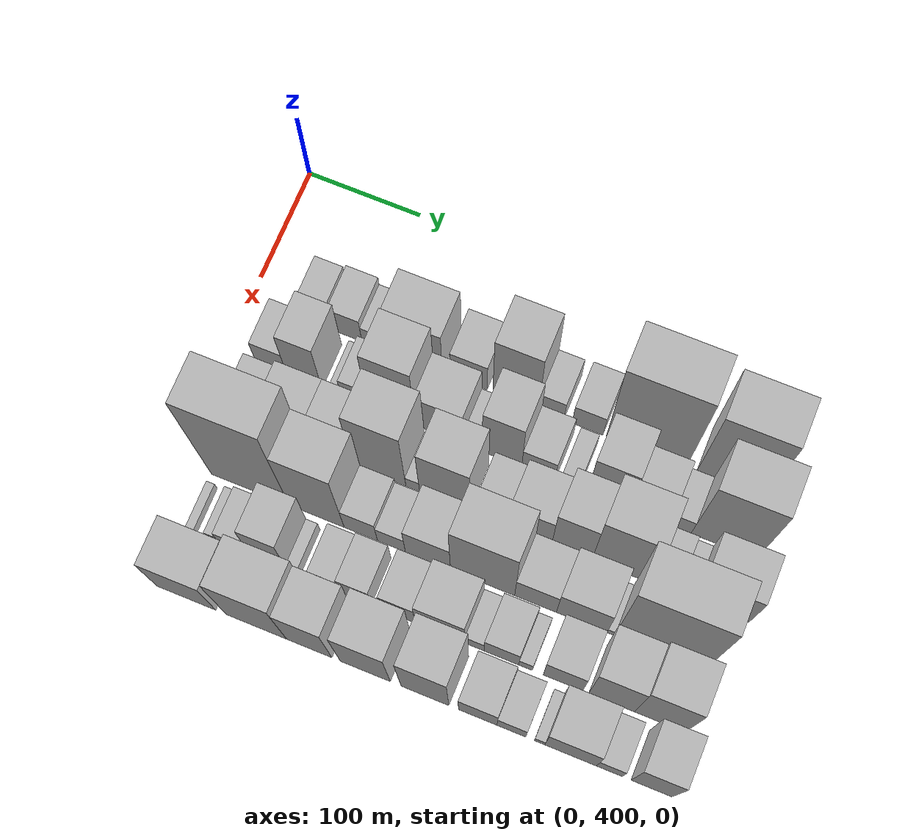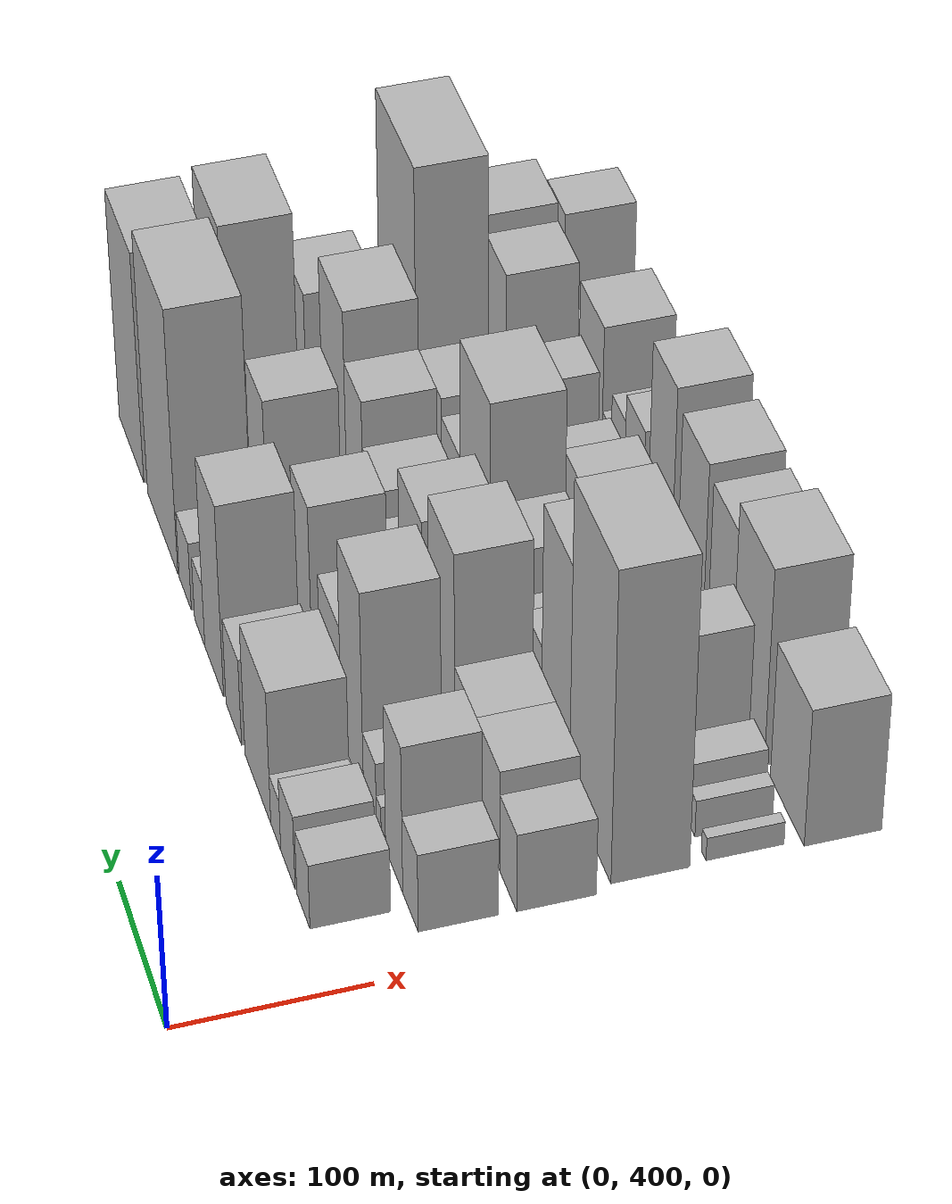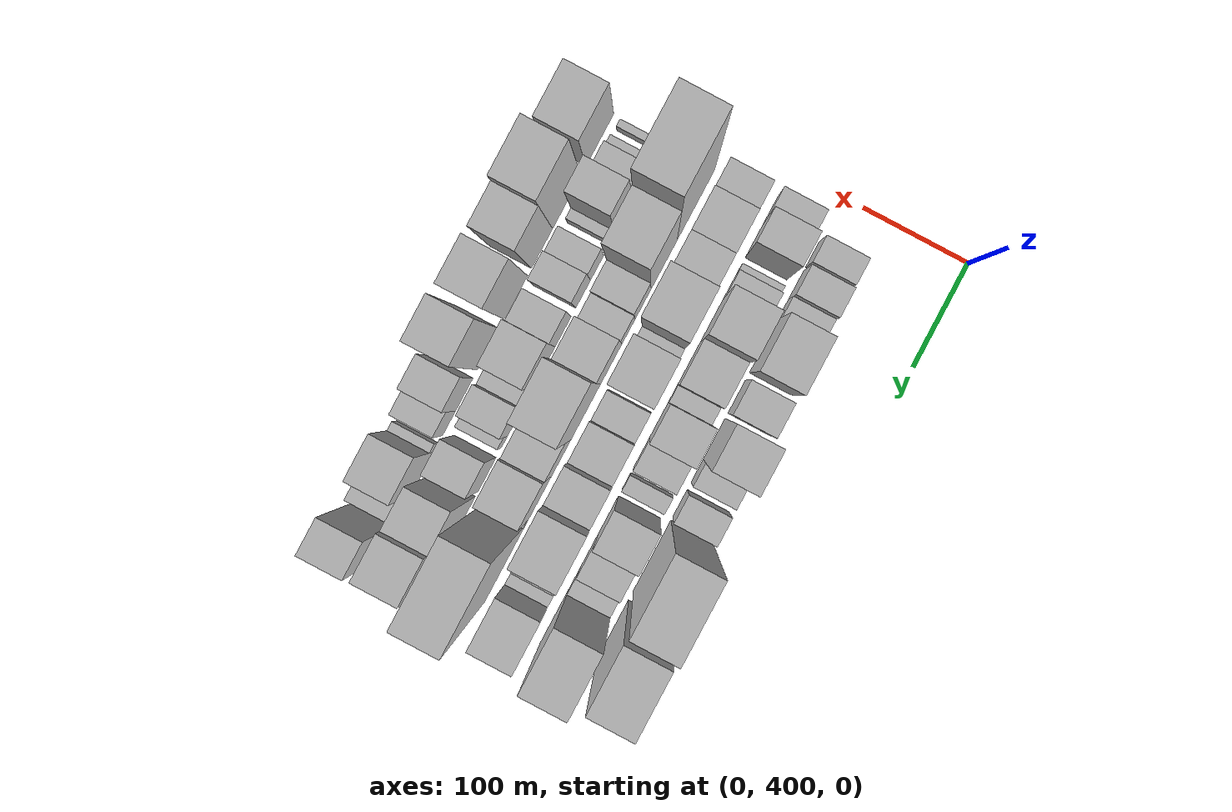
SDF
<sdf version="1.6">
 <world name="default">
  <model name="building_39">
   <static>1</static>
   <pose>100.0000 455.8428 0 0.000000 0.000000 0.000000</pose>
   <link name="link">
    <pose>0 0 21.00 0 0 0</pose>
    <collision name="collision"><geometry><box><size>40.0000 24.7315 42.0000</size></box></geometry></collision>
    <visual name="visual">
     <cast_shadows>0</cast_shadows>
     <geometry><box><size>40.0000 24.7315 42.0000</size></box></geometry>
     <material>
      <script>
       <uri>model://HANNAS_wall/materials/scripts</uri>
       <uri>model://HANNAS_wall/materials/textures</uri>
       <name>vrc/HANNAS_wall</name>
      </script>
     </material>
    </visual>
   </link>
  </model>
  <model name="building_40">
   <static>1</static>
   <pose>100.0000 484.9820 0 0.000000 0.000000 0.000000</pose>
   <link name="link">
    <pose>0 0 24.00 0 0 0</pose>
    <collision name="collision"><geometry><box><size>40.0000 27.5468 48.0000</size></box></geometry></collision>
    <visual name="visual">
     <cast_shadows>0</cast_shadows>
     <geometry><box><size>40.0000 27.5468 48.0000</size></box></geometry>
     <material>
      <script>
       <uri>model://HANNAS_wall/materials/scripts</uri>
       <uri>model://HANNAS_wall/materials/textures</uri>
       <name>vrc/HANNAS_wall</name>
      </script>
     </material>
    </visual>
   </link>
  </model>
  <model name="building_41">
   <static>1</static>
   <pose>100.0000 508.3720 0 0.000000 0.000000 0.000000</pose>
   <link name="link">
    <pose>0 0 16.50 0 0 0</pose>
    <collision name="collision"><geometry><box><size>40.0000 19.2333 33.0000</size></box></geometry></collision>
    <visual name="visual">
     <cast_shadows>0</cast_shadows>
     <geometry><box><size>40.0000 19.2333 33.0000</size></box></geometry>
     <material>
      <script>
       <uri>model://HANNAS_wall/materials/scripts</uri>
       <uri>model://HANNAS_wall/materials/textures</uri>
       <name>vrc/HANNAS_wall</name>
      </script>
     </material>
    </visual>
   </link>
  </model>
  <model name="building_42">
   <static>1</static>
   <pose>100.0000 543.5902 0 0.000000 0.000000 0.000000</pose>
   <link name="link">
    <pose>0 0 43.50 0 0 0</pose>
    <collision name="collision"><geometry><box><size>40.0000 51.2032 87.0000</size></box></geometry></collision>
    <visual name="visual">
     <cast_shadows>0</cast_shadows>
     <geometry><box><size>40.0000 51.2032 87.0000</size></box></geometry>
     <material>
      <script>
       <uri>model://HANNAS_wall/materials/scripts</uri>
       <uri>model://HANNAS_wall/materials/textures</uri>
       <name>vrc/HANNAS_wall</name>
      </script>
     </material>
    </visual>
   </link>
  </model>
  <model name="building_43">
   <static>1</static>
   <pose>100.0000 592.1448 0 0.000000 0.000000 0.000000</pose>
   <link name="link">
    <pose>0 0 28.50 0 0 0</pose>
    <collision name="collision"><geometry><box><size>40.0000 31.9061 57.0000</size></box></geometry></collision>
    <visual name="visual">
     <cast_shadows>0</cast_shadows>
     <geometry><box><size>40.0000 31.9061 57.0000</size></box></geometry>
     <material>
      <script>
       <uri>model://HANNAS_wall/materials/scripts</uri>
       <uri>model://HANNAS_wall/materials/textures</uri>
       <name>vrc/HANNAS_wall</name>
      </script>
     </material>
    </visual>
   </link>
  </model>
  <model name="building_44">
   <static>1</static>
   <pose>100.0000 632.7894 0 0.000000 0.000000 0.000000</pose>
   <link name="link">
    <pose>0 0 63.00 0 0 0</pose>
    <collision name="collision"><geometry><box><size>40.0000 39.3831 126.0000</size></box></geometry></collision>
    <visual name="visual">
     <cast_shadows>0</cast_shadows>
     <geometry><box><size>40.0000 39.3831 126.0000</size></box></geometry>
     <material>
      <script>
       <uri>model://HANNAS_wall/materials/scripts</uri>
       <uri>model://HANNAS_wall/materials/textures</uri>
       <name>vrc/HANNAS_wall</name>
      </script>
     </material>
    </visual>
   </link>
  </model>
  <model name="building_45">
   <static>1</static>
   <pose>100.0000 663.4566 0 0.000000 0.000000 0.000000</pose>
   <link name="link">
    <pose>0 0 21.00 0 0 0</pose>
    <collision name="collision"><geometry><box><size>40.0000 21.9513 42.0000</size></box></geometry></collision>
    <visual name="visual">
     <cast_shadows>0</cast_shadows>
     <geometry><box><size>40.0000 21.9513 42.0000</size></box></geometry>
     <material>
      <script>
       <uri>model://HANNAS_wall/materials/scripts</uri>
       <uri>model://HANNAS_wall/materials/textures</uri>
       <name>vrc/HANNAS_wall</name>
      </script>
     </material>
    </visual>
   </link>
  </model>
  <model name="building_46">
   <static>1</static>
   <pose>100.0000 694.6603 0 0.000000 0.000000 0.000000</pose>
   <link name="link">
    <pose>0 0 22.50 0 0 0</pose>
    <collision name="collision"><geometry><box><size>40.0000 26.4563 45.0000</size></box></geometry></collision>
    <visual name="visual">
     <cast_shadows>0</cast_shadows>
     <geometry><box><size>40.0000 26.4563 45.0000</size></box></geometry>
     <material>
      <script>
       <uri>model://HANNAS_wall/materials/scripts</uri>
       <uri>model://HANNAS_wall/materials/textures</uri>
       <name>vrc/HANNAS_wall</name>
      </script>
     </material>
    </visual>
   </link>
  </model>
  <model name="building_47">
   <static>1</static>
   <pose>100.0000 744.8290 0 0.000000 0.000000 0.000000</pose>
   <link name="link">
    <pose>0 0 87.00 0 0 0</pose>
    <collision name="collision"><geometry><box><size>40.0000 67.8811 174.0000</size></box></geometry></collision>
    <visual name="visual">
     <cast_shadows>0</cast_shadows>
     <geometry><box><size>40.0000 67.8811 174.0000</size></box></geometry>
     <material>
      <script>
       <uri>model://HANNAS_wall/materials/scripts</uri>
       <uri>model://HANNAS_wall/materials/textures</uri>
       <name>vrc/HANNAS_wall</name>
      </script>
     </material>
    </visual>
   </link>
  </model>
  <model name="building_48">
   <static>1</static>
   <pose>100.0000 816.4082 0 0.000000 0.000000 0.000000</pose>
   <link name="link">
    <pose>0 0 76.50 0 0 0</pose>
    <collision name="collision"><geometry><box><size>40.0000 57.2773 153.0000</size></box></geometry></collision>
    <visual name="visual">
     <cast_shadows>0</cast_shadows>
     <geometry><box><size>40.0000 57.2773 153.0000</size></box></geometry>
     <material>
      <script>
       <uri>model://HANNAS_wall/materials/scripts</uri>
       <uri>model://HANNAS_wall/materials/textures</uri>
       <name>vrc/HANNAS_wall</name>
      </script>
     </material>
    </visual>
   </link>
  </model>
  <model name="building_89">
   <static>1</static>
   <pose>149.0000 440.4236 0 0.000000 0.000000 0.000000</pose>
   <link name="link">
    <pose>0 0 25.50 0 0 0</pose>
    <collision name="collision"><geometry><box><size>40.0000 27.1819 51.0000</size></box></geometry></collision>
    <visual name="visual">
     <cast_shadows>0</cast_shadows>
     <geometry><box><size>40.0000 27.1819 51.0000</size></box></geometry>
     <material>
      <script>
       <uri>model://HANNAS_wall/materials/scripts</uri>
       <uri>model://HANNAS_wall/materials/textures</uri>
       <name>vrc/HANNAS_wall</name>
      </script>
     </material>
    </visual>
   </link>
  </model>
  <model name="building_90">
   <static>1</static>
   <pose>149.0000 469.3264 0 0.000000 0.000000 0.000000</pose>
   <link name="link">
    <pose>0 0 48.00 0 0 0</pose>
    <collision name="collision"><geometry><box><size>40.0000 30.6237 96.0000</size></box></geometry></collision>
    <visual name="visual">
     <cast_shadows>0</cast_shadows>
     <geometry><box><size>40.0000 30.6237 96.0000</size></box></geometry>
     <material>
      <script>
       <uri>model://HANNAS_wall/materials/scripts</uri>
       <uri>model://HANNAS_wall/materials/textures</uri>
       <name>vrc/HANNAS_wall</name>
      </script>
     </material>
    </visual>
   </link>
  </model>
  <model name="building_91">
   <static>1</static>
   <pose>149.0000 496.9773 0 0.000000 0.000000 0.000000</pose>
   <link name="link">
    <pose>0 0 10.50 0 0 0</pose>
    <collision name="collision"><geometry><box><size>40.0000 8.6781 21.0000</size></box></geometry></collision>
    <visual name="visual">
     <cast_shadows>0</cast_shadows>
     <geometry><box><size>40.0000 8.6781 21.0000</size></box></geometry>
     <material>
      <script>
       <uri>model://HANNAS_wall/materials/scripts</uri>
       <uri>model://HANNAS_wall/materials/textures</uri>
       <name>vrc/HANNAS_wall</name>
      </script>
     </material>
    </visual>
   </link>
  </model>
  <model name="building_92">
   <static>1</static>
   <pose>149.0000 513.1711 0 0.000000 0.000000 0.000000</pose>
   <link name="link">
    <pose>0 0 21.00 0 0 0</pose>
    <collision name="collision"><geometry><box><size>40.0000 23.7094 42.0000</size></box></geometry></collision>
    <visual name="visual">
     <cast_shadows>0</cast_shadows>
     <geometry><box><size>40.0000 23.7094 42.0000</size></box></geometry>
     <material>
      <script>
       <uri>model://HANNAS_wall/materials/scripts</uri>
       <uri>model://HANNAS_wall/materials/textures</uri>
       <name>vrc/HANNAS_wall</name>
      </script>
     </material>
    </visual>
   </link>
  </model>
  <model name="building_93">
   <static>1</static>
   <pose>149.0000 545.5395 0 0.000000 0.000000 0.000000</pose>
   <link name="link">
    <pose>0 0 66.00 0 0 0</pose>
    <collision name="collision"><geometry><box><size>40.0000 41.0275 132.0000</size></box></geometry></collision>
    <visual name="visual">
     <cast_shadows>0</cast_shadows>
     <geometry><box><size>40.0000 41.0275 132.0000</size></box></geometry>
     <material>
      <script>
       <uri>model://HANNAS_wall/materials/scripts</uri>
       <uri>model://HANNAS_wall/materials/textures</uri>
       <name>vrc/HANNAS_wall</name>
      </script>
     </material>
    </visual>
   </link>
  </model>
  <model name="building_94">
   <static>1</static>
   <pose>149.0000 586.5648 0 0.000000 0.000000 0.000000</pose>
   <link name="link">
    <pose>0 0 37.50 0 0 0</pose>
    <collision name="collision"><geometry><box><size>40.0000 41.0231 75.0000</size></box></geometry></collision>
    <visual name="visual">
     <cast_shadows>0</cast_shadows>
     <geometry><box><size>40.0000 41.0231 75.0000</size></box></geometry>
     <material>
      <script>
       <uri>model://HANNAS_wall/materials/scripts</uri>
       <uri>model://HANNAS_wall/materials/textures</uri>
       <name>vrc/HANNAS_wall</name>
      </script>
     </material>
    </visual>
   </link>
  </model>
  <model name="building_95">
   <static>1</static>
   <pose>149.0000 615.2348 0 0.000000 0.000000 0.000000</pose>
   <link name="link">
    <pose>0 0 15.00 0 0 0</pose>
    <collision name="collision"><geometry><box><size>40.0000 16.3168 30.0000</size></box></geometry></collision>
    <visual name="visual">
     <cast_shadows>0</cast_shadows>
     <geometry><box><size>40.0000 16.3168 30.0000</size></box></geometry>
     <material>
      <script>
       <uri>model://HANNAS_wall/materials/scripts</uri>
       <uri>model://HANNAS_wall/materials/textures</uri>
       <name>vrc/HANNAS_wall</name>
      </script>
     </material>
    </visual>
   </link>
  </model>
  <model name="building_96">
   <static>1</static>
   <pose>149.0000 640.4226 0 0.000000 0.000000 0.000000</pose>
   <link name="link">
    <pose>0 0 52.50 0 0 0</pose>
    <collision name="collision"><geometry><box><size>40.0000 34.0589 105.0000</size></box></geometry></collision>
    <visual name="visual">
     <cast_shadows>0</cast_shadows>
     <geometry><box><size>40.0000 34.0589 105.0000</size></box></geometry>
     <material>
      <script>
       <uri>model://HANNAS_wall/materials/scripts</uri>
       <uri>model://HANNAS_wall/materials/textures</uri>
       <name>vrc/HANNAS_wall</name>
      </script>
     </material>
    </visual>
   </link>
  </model>
  <model name="building_97">
   <static>1</static>
   <pose>149.0000 671.7177 0 0.000000 0.000000 0.000000</pose>
   <link name="link">
    <pose>0 0 24.00 0 0 0</pose>
    <collision name="collision"><geometry><box><size>40.0000 28.5313 48.0000</size></box></geometry></collision>
    <visual name="visual">
     <cast_shadows>0</cast_shadows>
     <geometry><box><size>40.0000 28.5313 48.0000</size></box></geometry>
     <material>
      <script>
       <uri>model://HANNAS_wall/materials/scripts</uri>
       <uri>model://HANNAS_wall/materials/textures</uri>
       <name>vrc/HANNAS_wall</name>
      </script>
     </material>
    </visual>
   </link>
  </model>
  <model name="building_98">
   <static>1</static>
   <pose>149.0000 698.7285 0 0.000000 0.000000 0.000000</pose>
   <link name="link">
    <pose>0 0 15.00 0 0 0</pose>
    <collision name="collision"><geometry><box><size>40.0000 15.4903 30.0000</size></box></geometry></collision>
    <visual name="visual">
     <cast_shadows>0</cast_shadows>
     <geometry><box><size>40.0000 15.4903 30.0000</size></box></geometry>
     <material>
      <script>
       <uri>model://HANNAS_wall/materials/scripts</uri>
       <uri>model://HANNAS_wall/materials/textures</uri>
       <name>vrc/HANNAS_wall</name>
      </script>
     </material>
    </visual>
   </link>
  </model>
  <model name="building_99">
   <static>1</static>
   <pose>149.0000 731.2750 0 0.000000 0.000000 0.000000</pose>
   <link name="link">
    <pose>0 0 51.00 0 0 0</pose>
    <collision name="collision"><geometry><box><size>40.0000 35.6026 102.0000</size></box></geometry></collision>
    <visual name="visual">
     <cast_shadows>0</cast_shadows>
     <geometry><box><size>40.0000 35.6026 102.0000</size></box></geometry>
     <material>
      <script>
       <uri>model://HANNAS_wall/materials/scripts</uri>
       <uri>model://HANNAS_wall/materials/textures</uri>
       <name>vrc/HANNAS_wall</name>
      </script>
     </material>
    </visual>
   </link>
  </model>
  <model name="building_100">
   <static>1</static>
   <pose>149.0000 765.5694 0 0.000000 0.000000 0.000000</pose>
   <link name="link">
    <pose>0 0 28.50 0 0 0</pose>
    <collision name="collision"><geometry><box><size>40.0000 32.9861 57.0000</size></box></geometry></collision>
    <visual name="visual">
     <cast_shadows>0</cast_shadows>
     <geometry><box><size>40.0000 32.9861 57.0000</size></box></geometry>
     <material>
      <script>
       <uri>model://HANNAS_wall/materials/scripts</uri>
       <uri>model://HANNAS_wall/materials/textures</uri>
       <name>vrc/HANNAS_wall</name>
      </script>
     </material>
    </visual>
   </link>
  </model>
  <model name="building_101">
   <static>1</static>
   <pose>149.0000 791.4416 0 0.000000 0.000000 0.000000</pose>
   <link name="link">
    <pose>0 0 18.00 0 0 0</pose>
    <collision name="collision"><geometry><box><size>40.0000 18.7583 36.0000</size></box></geometry></collision>
    <visual name="visual">
     <cast_shadows>0</cast_shadows>
     <geometry><box><size>40.0000 18.7583 36.0000</size></box></geometry>
     <material>
      <script>
       <uri>model://HANNAS_wall/materials/scripts</uri>
       <uri>model://HANNAS_wall/materials/textures</uri>
       <name>vrc/HANNAS_wall</name>
      </script>
     </material>
    </visual>
   </link>
  </model>
  <model name="building_102">
   <static>1</static>
   <pose>149.0000 828.1147 0 0.000000 0.000000 0.000000</pose>
   <link name="link">
    <pose>0 0 75.00 0 0 0</pose>
    <collision name="collision"><geometry><box><size>40.0000 54.5879 150.0000</size></box></geometry></collision>
    <visual name="visual">
     <cast_shadows>0</cast_shadows>
     <geometry><box><size>40.0000 54.5879 150.0000</size></box></geometry>
     <material>
      <script>
       <uri>model://HANNAS_wall/materials/scripts</uri>
       <uri>model://HANNAS_wall/materials/textures</uri>
       <name>vrc/HANNAS_wall</name>
      </script>
     </material>
    </visual>
   </link>
  </model>
  <model name="building_139">
   <static>1</static>
   <pose>198.0000 440.7717 0 0.000000 0.000000 0.000000</pose>
   <link name="link">
    <pose>0 0 25.50 0 0 0</pose>
    <collision name="collision"><geometry><box><size>40.0000 28.6304 51.0000</size></box></geometry></collision>
    <visual name="visual">
     <cast_shadows>0</cast_shadows>
     <geometry><box><size>40.0000 28.6304 51.0000</size></box></geometry>
     <material>
      <script>
       <uri>model://HANNAS_wall/materials/scripts</uri>
       <uri>model://HANNAS_wall/materials/textures</uri>
       <name>vrc/HANNAS_wall</name>
      </script>
     </material>
    </visual>
   </link>
  </model>
  <model name="building_140">
   <static>1</static>
   <pose>198.0000 474.8522 0 0.000000 0.000000 0.000000</pose>
   <link name="link">
    <pose>0 0 33.00 0 0 0</pose>
    <collision name="collision"><geometry><box><size>40.0000 39.5307 66.0000</size></box></geometry></collision>
    <visual name="visual">
     <cast_shadows>0</cast_shadows>
     <geometry><box><size>40.0000 39.5307 66.0000</size></box></geometry>
     <material>
      <script>
       <uri>model://HANNAS_wall/materials/scripts</uri>
       <uri>model://HANNAS_wall/materials/textures</uri>
       <name>vrc/HANNAS_wall</name>
      </script>
     </material>
    </visual>
   </link>
  </model>
  <model name="building_141">
   <static>1</static>
   <pose>198.0000 513.5137 0 0.000000 0.000000 0.000000</pose>
   <link name="link">
    <pose>0 0 33.00 0 0 0</pose>
    <collision name="collision"><geometry><box><size>40.0000 37.7924 66.0000</size></box></geometry></collision>
    <visual name="visual">
     <cast_shadows>0</cast_shadows>
     <geometry><box><size>40.0000 37.7924 66.0000</size></box></geometry>
     <material>
      <script>
       <uri>model://HANNAS_wall/materials/scripts</uri>
       <uri>model://HANNAS_wall/materials/textures</uri>
       <name>vrc/HANNAS_wall</name>
      </script>
     </material>
    </visual>
   </link>
  </model>
  <model name="building_142">
   <static>1</static>
   <pose>198.0000 555.3351 0 0.000000 0.000000 0.000000</pose>
   <link name="link">
    <pose>0 0 69.00 0 0 0</pose>
    <collision name="collision"><geometry><box><size>40.0000 45.8503 138.0000</size></box></geometry></collision>
    <visual name="visual">
     <cast_shadows>0</cast_shadows>
     <geometry><box><size>40.0000 45.8503 138.0000</size></box></geometry>
     <material>
      <script>
       <uri>model://HANNAS_wall/materials/scripts</uri>
       <uri>model://HANNAS_wall/materials/textures</uri>
       <name>vrc/HANNAS_wall</name>
      </script>
     </material>
    </visual>
   </link>
  </model>
  <model name="building_143">
   <static>1</static>
   <pose>198.0000 584.1385 0 0.000000 0.000000 0.000000</pose>
   <link name="link">
    <pose>0 0 13.50 0 0 0</pose>
    <collision name="collision"><geometry><box><size>40.0000 11.7565 27.0000</size></box></geometry></collision>
    <visual name="visual">
     <cast_shadows>0</cast_shadows>
     <geometry><box><size>40.0000 11.7565 27.0000</size></box></geometry>
     <material>
      <script>
       <uri>model://HANNAS_wall/materials/scripts</uri>
       <uri>model://HANNAS_wall/materials/textures</uri>
       <name>vrc/HANNAS_wall</name>
      </script>
     </material>
    </visual>
   </link>
  </model>
  <model name="building_144">
   <static>1</static>
   <pose>198.0000 611.3877 0 0.000000 0.000000 0.000000</pose>
   <link name="link">
    <pose>0 0 55.50 0 0 0</pose>
    <collision name="collision"><geometry><box><size>40.0000 42.7419 111.0000</size></box></geometry></collision>
    <visual name="visual">
     <cast_shadows>0</cast_shadows>
     <geometry><box><size>40.0000 42.7419 111.0000</size></box></geometry>
     <material>
      <script>
       <uri>model://HANNAS_wall/materials/scripts</uri>
       <uri>model://HANNAS_wall/materials/textures</uri>
       <name>vrc/HANNAS_wall</name>
      </script>
     </material>
    </visual>
   </link>
  </model>
  <model name="building_145">
   <static>1</static>
   <pose>198.0000 651.6203 0 0.000000 0.000000 0.000000</pose>
   <link name="link">
    <pose>0 0 25.50 0 0 0</pose>
    <collision name="collision"><geometry><box><size>40.0000 27.7234 51.0000</size></box></geometry></collision>
    <visual name="visual">
     <cast_shadows>0</cast_shadows>
     <geometry><box><size>40.0000 27.7234 51.0000</size></box></geometry>
     <material>
      <script>
       <uri>model://HANNAS_wall/materials/scripts</uri>
       <uri>model://HANNAS_wall/materials/textures</uri>
       <name>vrc/HANNAS_wall</name>
      </script>
     </material>
    </visual>
   </link>
  </model>
  <model name="building_146">
   <static>1</static>
   <pose>198.0000 683.9225 0 0.000000 0.000000 0.000000</pose>
   <link name="link">
    <pose>0 0 34.50 0 0 0</pose>
    <collision name="collision"><geometry><box><size>40.0000 36.8810 69.0000</size></box></geometry></collision>
    <visual name="visual">
     <cast_shadows>0</cast_shadows>
     <geometry><box><size>40.0000 36.8810 69.0000</size></box></geometry>
     <material>
      <script>
       <uri>model://HANNAS_wall/materials/scripts</uri>
       <uri>model://HANNAS_wall/materials/textures</uri>
       <name>vrc/HANNAS_wall</name>
      </script>
     </material>
    </visual>
   </link>
  </model>
  <model name="building_147">
   <static>1</static>
   <pose>198.0000 719.2259 0 0.000000 0.000000 0.000000</pose>
   <link name="link">
    <pose>0 0 49.50 0 0 0</pose>
    <collision name="collision"><geometry><box><size>40.0000 33.7258 99.0000</size></box></geometry></collision>
    <visual name="visual">
     <cast_shadows>0</cast_shadows>
     <geometry><box><size>40.0000 33.7258 99.0000</size></box></geometry>
     <material>
      <script>
       <uri>model://HANNAS_wall/materials/scripts</uri>
       <uri>model://HANNAS_wall/materials/textures</uri>
       <name>vrc/HANNAS_wall</name>
      </script>
     </material>
    </visual>
   </link>
  </model>
  <model name="building_148">
   <static>1</static>
   <pose>198.0000 760.0722 0 0.000000 0.000000 0.000000</pose>
   <link name="link">
    <pose>0 0 66.00 0 0 0</pose>
    <collision name="collision"><geometry><box><size>40.0000 47.9668 132.0000</size></box></geometry></collision>
    <visual name="visual">
     <cast_shadows>0</cast_shadows>
     <geometry><box><size>40.0000 47.9668 132.0000</size></box></geometry>
     <material>
      <script>
       <uri>model://HANNAS_wall/materials/scripts</uri>
       <uri>model://HANNAS_wall/materials/textures</uri>
       <name>vrc/HANNAS_wall</name>
      </script>
     </material>
    </visual>
   </link>
  </model>
  <model name="building_149">
   <static>1</static>
   <pose>198.0000 795.1150 0 0.000000 0.000000 0.000000</pose>
   <link name="link">
    <pose>0 0 19.50 0 0 0</pose>
    <collision name="collision"><geometry><box><size>40.0000 22.1190 39.0000</size></box></geometry></collision>
    <visual name="visual">
     <cast_shadows>0</cast_shadows>
     <geometry><box><size>40.0000 22.1190 39.0000</size></box></geometry>
     <material>
      <script>
       <uri>model://HANNAS_wall/materials/scripts</uri>
       <uri>model://HANNAS_wall/materials/textures</uri>
       <name>vrc/HANNAS_wall</name>
      </script>
     </material>
    </visual>
   </link>
  </model>
  <model name="building_150">
   <static>1</static>
   <pose>198.0000 812.7202 0 0.000000 0.000000 0.000000</pose>
   <link name="link">
    <pose>0 0 13.50 0 0 0</pose>
    <collision name="collision"><geometry><box><size>40.0000 13.0913 27.0000</size></box></geometry></collision>
    <visual name="visual">
     <cast_shadows>0</cast_shadows>
     <geometry><box><size>40.0000 13.0913 27.0000</size></box></geometry>
     <material>
      <script>
       <uri>model://HANNAS_wall/materials/scripts</uri>
       <uri>model://HANNAS_wall/materials/textures</uri>
       <name>vrc/HANNAS_wall</name>
      </script>
     </material>
    </visual>
   </link>
  </model>
  <model name="building_151">
   <static>1</static>
   <pose>198.0000 843.0988 0 0.000000 0.000000 0.000000</pose>
   <link name="link">
    <pose>0 0 40.50 0 0 0</pose>
    <collision name="collision"><geometry><box><size>40.0000 47.6659 81.0000</size></box></geometry></collision>
    <visual name="visual">
     <cast_shadows>0</cast_shadows>
     <geometry><box><size>40.0000 47.6659 81.0000</size></box></geometry>
     <material>
      <script>
       <uri>model://HANNAS_wall/materials/scripts</uri>
       <uri>model://HANNAS_wall/materials/textures</uri>
       <name>vrc/HANNAS_wall</name>
      </script>
     </material>
    </visual>
   </link>
  </model>
  <model name="building_183">
   <static>1</static>
   <pose>247.0000 465.3853 0 0.000000 0.000000 0.000000</pose>
   <link name="link">
    <pose>0 0 100.50 0 0 0</pose>
    <collision name="collision"><geometry><box><size>40.0000 67.6301 201.0000</size></box></geometry></collision>
    <visual name="visual">
     <cast_shadows>0</cast_shadows>
     <geometry><box><size>40.0000 67.6301 201.0000</size></box></geometry>
     <material>
      <script>
       <uri>model://HANNAS_wall/materials/scripts</uri>
       <uri>model://HANNAS_wall/materials/textures</uri>
       <name>vrc/HANNAS_wall</name>
      </script>
     </material>
    </visual>
   </link>
  </model>
  <model name="building_184">
   <static>1</static>
   <pose>247.0000 522.6899 0 0.000000 0.000000 0.000000</pose>
   <link name="link">
    <pose>0 0 73.50 0 0 0</pose>
    <collision name="collision"><geometry><box><size>40.0000 46.9792 147.0000</size></box></geometry></collision>
    <visual name="visual">
     <cast_shadows>0</cast_shadows>
     <geometry><box><size>40.0000 46.9792 147.0000</size></box></geometry>
     <material>
      <script>
       <uri>model://HANNAS_wall/materials/scripts</uri>
       <uri>model://HANNAS_wall/materials/textures</uri>
       <name>vrc/HANNAS_wall</name>
      </script>
     </material>
    </visual>
   </link>
  </model>
  <model name="building_185">
   <static>1</static>
   <pose>247.0000 560.3854 0 0.000000 0.000000 0.000000</pose>
   <link name="link">
    <pose>0 0 27.00 0 0 0</pose>
    <collision name="collision"><geometry><box><size>40.0000 28.4116 54.0000</size></box></geometry></collision>
    <visual name="visual">
     <cast_shadows>0</cast_shadows>
     <geometry><box><size>40.0000 28.4116 54.0000</size></box></geometry>
     <material>
      <script>
       <uri>model://HANNAS_wall/materials/scripts</uri>
       <uri>model://HANNAS_wall/materials/textures</uri>
       <name>vrc/HANNAS_wall</name>
      </script>
     </material>
    </visual>
   </link>
  </model>
  <model name="building_186">
   <static>1</static>
   <pose>247.0000 586.4473 0 0.000000 0.000000 0.000000</pose>
   <link name="link">
    <pose>0 0 21.00 0 0 0</pose>
    <collision name="collision"><geometry><box><size>40.0000 23.7123 42.0000</size></box></geometry></collision>
    <visual name="visual">
     <cast_shadows>0</cast_shadows>
     <geometry><box><size>40.0000 23.7123 42.0000</size></box></geometry>
     <material>
      <script>
       <uri>model://HANNAS_wall/materials/scripts</uri>
       <uri>model://HANNAS_wall/materials/textures</uri>
       <name>vrc/HANNAS_wall</name>
      </script>
     </material>
    </visual>
   </link>
  </model>
  <model name="building_187">
   <static>1</static>
   <pose>247.0000 617.4560 0 0.000000 0.000000 0.000000</pose>
   <link name="link">
    <pose>0 0 36.00 0 0 0</pose>
    <collision name="collision"><geometry><box><size>40.0000 38.3051 72.0000</size></box></geometry></collision>
    <visual name="visual">
     <cast_shadows>0</cast_shadows>
     <geometry><box><size>40.0000 38.3051 72.0000</size></box></geometry>
     <material>
      <script>
       <uri>model://HANNAS_wall/materials/scripts</uri>
       <uri>model://HANNAS_wall/materials/textures</uri>
       <name>vrc/HANNAS_wall</name>
      </script>
     </material>
    </visual>
   </link>
  </model>
  <model name="building_188">
   <static>1</static>
   <pose>247.0000 663.5788 0 0.000000 0.000000 0.000000</pose>
   <link name="link">
    <pose>0 0 69.00 0 0 0</pose>
    <collision name="collision"><geometry><box><size>40.0000 53.9406 138.0000</size></box></geometry></collision>
    <visual name="visual">
     <cast_shadows>0</cast_shadows>
     <geometry><box><size>40.0000 53.9406 138.0000</size></box></geometry>
     <material>
      <script>
       <uri>model://HANNAS_wall/materials/scripts</uri>
       <uri>model://HANNAS_wall/materials/textures</uri>
       <name>vrc/HANNAS_wall</name>
      </script>
     </material>
    </visual>
   </link>
  </model>
  <model name="building_189">
   <static>1</static>
   <pose>247.0000 708.0125 0 0.000000 0.000000 0.000000</pose>
   <link name="link">
    <pose>0 0 30.00 0 0 0</pose>
    <collision name="collision"><geometry><box><size>40.0000 34.9266 60.0000</size></box></geometry></collision>
    <visual name="visual">
     <cast_shadows>0</cast_shadows>
     <geometry><box><size>40.0000 34.9266 60.0000</size></box></geometry>
     <material>
      <script>
       <uri>model://HANNAS_wall/materials/scripts</uri>
       <uri>model://HANNAS_wall/materials/textures</uri>
       <name>vrc/HANNAS_wall</name>
      </script>
     </material>
    </visual>
   </link>
  </model>
  <model name="building_190">
   <static>1</static>
   <pose>247.0000 746.5184 0 0.000000 0.000000 0.000000</pose>
   <link name="link">
    <pose>0 0 36.00 0 0 0</pose>
    <collision name="collision"><geometry><box><size>40.0000 42.0852 72.0000</size></box></geometry></collision>
    <visual name="visual">
     <cast_shadows>0</cast_shadows>
     <geometry><box><size>40.0000 42.0852 72.0000</size></box></geometry>
     <material>
      <script>
       <uri>model://HANNAS_wall/materials/scripts</uri>
       <uri>model://HANNAS_wall/materials/textures</uri>
       <name>vrc/HANNAS_wall</name>
      </script>
     </material>
    </visual>
   </link>
  </model>
  <model name="building_191">
   <static>1</static>
   <pose>247.0000 770.6252 0 0.000000 0.000000 0.000000</pose>
   <link name="link">
    <pose>0 0 7.50 0 0 0</pose>
    <collision name="collision"><geometry><box><size>40.0000 6.1285 15.0000</size></box></geometry></collision>
    <visual name="visual">
     <cast_shadows>0</cast_shadows>
     <geometry><box><size>40.0000 6.1285 15.0000</size></box></geometry>
     <material>
      <script>
       <uri>model://HANNAS_wall/materials/scripts</uri>
       <uri>model://HANNAS_wall/materials/textures</uri>
       <name>vrc/HANNAS_wall</name>
      </script>
     </material>
    </visual>
   </link>
  </model>
  <model name="building_192">
   <static>1</static>
   <pose>247.0000 810.2633 0 0.000000 0.000000 0.000000</pose>
   <link name="link">
    <pose>0 0 93.00 0 0 0</pose>
    <collision name="collision"><geometry><box><size>40.0000 73.1477 186.0000</size></box></geometry></collision>
    <visual name="visual">
     <cast_shadows>0</cast_shadows>
     <geometry><box><size>40.0000 73.1477 186.0000</size></box></geometry>
     <material>
      <script>
       <uri>model://HANNAS_wall/materials/scripts</uri>
       <uri>model://HANNAS_wall/materials/textures</uri>
       <name>vrc/HANNAS_wall</name>
      </script>
     </material>
    </visual>
   </link>
  </model>
  <model name="building_230">
   <static>1</static>
   <pose>296.0000 436.9836 0 0.000000 0.000000 0.000000</pose>
   <link name="link">
    <pose>0 0 7.50 0 0 0</pose>
    <collision name="collision"><geometry><box><size>40.0000 7.0443 15.0000</size></box></geometry></collision>
    <visual name="visual">
     <cast_shadows>0</cast_shadows>
     <geometry><box><size>40.0000 7.0443 15.0000</size></box></geometry>
     <material>
      <script>
       <uri>model://HANNAS_wall/materials/scripts</uri>
       <uri>model://HANNAS_wall/materials/textures</uri>
       <name>vrc/HANNAS_wall</name>
      </script>
     </material>
    </visual>
   </link>
  </model>
  <model name="building_231">
   <static>1</static>
   <pose>296.0000 455.4782 0 0.000000 0.000000 0.000000</pose>
   <link name="link">
    <pose>0 0 12.00 0 0 0</pose>
    <collision name="collision"><geometry><box><size>40.0000 9.9450 24.0000</size></box></geometry></collision>
    <visual name="visual">
     <cast_shadows>0</cast_shadows>
     <geometry><box><size>40.0000 9.9450 24.0000</size></box></geometry>
     <material>
      <script>
       <uri>model://HANNAS_wall/materials/scripts</uri>
       <uri>model://HANNAS_wall/materials/textures</uri>
       <name>vrc/HANNAS_wall</name>
      </script>
     </material>
    </visual>
   </link>
  </model>
  <model name="building_232">
   <static>1</static>
   <pose>296.0000 471.8363 0 0.000000 0.000000 0.000000</pose>
   <link name="link">
    <pose>0 0 19.50 0 0 0</pose>
    <collision name="collision"><geometry><box><size>40.0000 22.7713 39.0000</size></box></geometry></collision>
    <visual name="visual">
     <cast_shadows>0</cast_shadows>
     <geometry><box><size>40.0000 22.7713 39.0000</size></box></geometry>
     <material>
      <script>
       <uri>model://HANNAS_wall/materials/scripts</uri>
       <uri>model://HANNAS_wall/materials/textures</uri>
       <name>vrc/HANNAS_wall</name>
      </script>
     </material>
    </visual>
   </link>
  </model>
  <model name="building_233">
   <static>1</static>
   <pose>296.0000 503.8848 0 0.000000 0.000000 0.000000</pose>
   <link name="link">
    <pose>0 0 48.00 0 0 0</pose>
    <collision name="collision"><geometry><box><size>40.0000 31.3256 96.0000</size></box></geometry></collision>
    <visual name="visual">
     <cast_shadows>0</cast_shadows>
     <geometry><box><size>40.0000 31.3256 96.0000</size></box></geometry>
     <material>
      <script>
       <uri>model://HANNAS_wall/materials/scripts</uri>
       <uri>model://HANNAS_wall/materials/textures</uri>
       <name>vrc/HANNAS_wall</name>
      </script>
     </material>
    </visual>
   </link>
  </model>
  <model name="building_234">
   <static>1</static>
   <pose>296.0000 524.4695 0 0.000000 0.000000 0.000000</pose>
   <link name="link">
    <pose>0 0 12.00 0 0 0</pose>
    <collision name="collision"><geometry><box><size>40.0000 9.8439 24.0000</size></box></geometry></collision>
    <visual name="visual">
     <cast_shadows>0</cast_shadows>
     <geometry><box><size>40.0000 9.8439 24.0000</size></box></geometry>
     <material>
      <script>
       <uri>model://HANNAS_wall/materials/scripts</uri>
       <uri>model://HANNAS_wall/materials/textures</uri>
       <name>vrc/HANNAS_wall</name>
      </script>
     </material>
    </visual>
   </link>
  </model>
  <model name="building_235">
   <static>1</static>
   <pose>296.0000 551.3940 0 0.000000 0.000000 0.000000</pose>
   <link name="link">
    <pose>0 0 21.00 0 0 0</pose>
    <collision name="collision"><geometry><box><size>40.0000 24.0051 42.0000</size></box></geometry></collision>
    <visual name="visual">
     <cast_shadows>0</cast_shadows>
     <geometry><box><size>40.0000 24.0051 42.0000</size></box></geometry>
     <material>
      <script>
       <uri>model://HANNAS_wall/materials/scripts</uri>
       <uri>model://HANNAS_wall/materials/textures</uri>
       <name>vrc/HANNAS_wall</name>
      </script>
     </material>
    </visual>
   </link>
  </model>
  <model name="building_236">
   <static>1</static>
   <pose>296.0000 576.6742 0 0.000000 0.000000 0.000000</pose>
   <link name="link">
    <pose>0 0 25.50 0 0 0</pose>
    <collision name="collision"><geometry><box><size>40.0000 26.5553 51.0000</size></box></geometry></collision>
    <visual name="visual">
     <cast_shadows>0</cast_shadows>
     <geometry><box><size>40.0000 26.5553 51.0000</size></box></geometry>
     <material>
      <script>
       <uri>model://HANNAS_wall/materials/scripts</uri>
       <uri>model://HANNAS_wall/materials/textures</uri>
       <name>vrc/HANNAS_wall</name>
      </script>
     </material>
    </visual>
   </link>
  </model>
  <model name="building_237">
   <static>1</static>
   <pose>296.0000 612.5420 0 0.000000 0.000000 0.000000</pose>
   <link name="link">
    <pose>0 0 27.00 0 0 0</pose>
    <collision name="collision"><geometry><box><size>40.0000 29.1803 54.0000</size></box></geometry></collision>
    <visual name="visual">
     <cast_shadows>0</cast_shadows>
     <geometry><box><size>40.0000 29.1803 54.0000</size></box></geometry>
     <material>
      <script>
       <uri>model://HANNAS_wall/materials/scripts</uri>
       <uri>model://HANNAS_wall/materials/textures</uri>
       <name>vrc/HANNAS_wall</name>
      </script>
     </material>
    </visual>
   </link>
  </model>
  <model name="building_238">
   <static>1</static>
   <pose>296.0000 647.8579 0 0.000000 0.000000 0.000000</pose>
   <link name="link">
    <pose>0 0 36.00 0 0 0</pose>
    <collision name="collision"><geometry><box><size>40.0000 41.4514 72.0000</size></box></geometry></collision>
    <visual name="visual">
     <cast_shadows>0</cast_shadows>
     <geometry><box><size>40.0000 41.4514 72.0000</size></box></geometry>
     <material>
      <script>
       <uri>model://HANNAS_wall/materials/scripts</uri>
       <uri>model://HANNAS_wall/materials/textures</uri>
       <name>vrc/HANNAS_wall</name>
      </script>
     </material>
    </visual>
   </link>
  </model>
  <model name="building_239">
   <static>1</static>
   <pose>296.0000 676.6072 0 0.000000 0.000000 0.000000</pose>
   <link name="link">
    <pose>0 0 15.00 0 0 0</pose>
    <collision name="collision"><geometry><box><size>40.0000 16.0473 30.0000</size></box></geometry></collision>
    <visual name="visual">
     <cast_shadows>0</cast_shadows>
     <geometry><box><size>40.0000 16.0473 30.0000</size></box></geometry>
     <material>
      <script>
       <uri>model://HANNAS_wall/materials/scripts</uri>
       <uri>model://HANNAS_wall/materials/textures</uri>
       <name>vrc/HANNAS_wall</name>
      </script>
     </material>
    </visual>
   </link>
  </model>
  <model name="building_240">
   <static>1</static>
   <pose>296.0000 699.0273 0 0.000000 0.000000 0.000000</pose>
   <link name="link">
    <pose>0 0 24.00 0 0 0</pose>
    <collision name="collision"><geometry><box><size>40.0000 28.7928 48.0000</size></box></geometry></collision>
    <visual name="visual">
     <cast_shadows>0</cast_shadows>
     <geometry><box><size>40.0000 28.7928 48.0000</size></box></geometry>
     <material>
      <script>
       <uri>model://HANNAS_wall/materials/scripts</uri>
       <uri>model://HANNAS_wall/materials/textures</uri>
       <name>vrc/HANNAS_wall</name>
      </script>
     </material>
    </visual>
   </link>
  </model>
  <model name="building_241">
   <static>1</static>
   <pose>296.0000 719.0632 0 0.000000 0.000000 0.000000</pose>
   <link name="link">
    <pose>0 0 12.00 0 0 0</pose>
    <collision name="collision"><geometry><box><size>40.0000 11.2789 24.0000</size></box></geometry></collision>
    <visual name="visual">
     <cast_shadows>0</cast_shadows>
     <geometry><box><size>40.0000 11.2789 24.0000</size></box></geometry>
     <material>
      <script>
       <uri>model://HANNAS_wall/materials/scripts</uri>
       <uri>model://HANNAS_wall/materials/textures</uri>
       <name>vrc/HANNAS_wall</name>
      </script>
     </material>
    </visual>
   </link>
  </model>
  <model name="building_242">
   <static>1</static>
   <pose>296.0000 750.0127 0 0.000000 0.000000 0.000000</pose>
   <link name="link">
    <pose>0 0 31.50 0 0 0</pose>
    <collision name="collision"><geometry><box><size>40.0000 32.6201 63.0000</size></box></geometry></collision>
    <visual name="visual">
     <cast_shadows>0</cast_shadows>
     <geometry><box><size>40.0000 32.6201 63.0000</size></box></geometry>
     <material>
      <script>
       <uri>model://HANNAS_wall/materials/scripts</uri>
       <uri>model://HANNAS_wall/materials/textures</uri>
       <name>vrc/HANNAS_wall</name>
      </script>
     </material>
    </visual>
   </link>
  </model>
  <model name="building_243">
   <static>1</static>
   <pose>296.0000 790.1327 0 0.000000 0.000000 0.000000</pose>
   <link name="link">
    <pose>0 0 54.00 0 0 0</pose>
    <collision name="collision"><geometry><box><size>40.0000 37.6200 108.0000</size></box></geometry></collision>
    <visual name="visual">
     <cast_shadows>0</cast_shadows>
     <geometry><box><size>40.0000 37.6200 108.0000</size></box></geometry>
     <material>
      <script>
       <uri>model://HANNAS_wall/materials/scripts</uri>
       <uri>model://HANNAS_wall/materials/textures</uri>
       <name>vrc/HANNAS_wall</name>
      </script>
     </material>
    </visual>
   </link>
  </model>
  <model name="building_244">
   <static>1</static>
   <pose>296.0000 829.4363 0 0.000000 0.000000 0.000000</pose>
   <link name="link">
    <pose>0 0 60.00 0 0 0</pose>
    <collision name="collision"><geometry><box><size>40.0000 40.9872 120.0000</size></box></geometry></collision>
    <visual name="visual">
     <cast_shadows>0</cast_shadows>
     <geometry><box><size>40.0000 40.9872 120.0000</size></box></geometry>
     <material>
      <script>
       <uri>model://HANNAS_wall/materials/scripts</uri>
       <uri>model://HANNAS_wall/materials/textures</uri>
       <name>vrc/HANNAS_wall</name>
      </script>
     </material>
    </visual>
   </link>
  </model>
  <model name="building_282">
   <static>1</static>
   <pose>345.0000 454.4784 0 0.000000 0.000000 0.000000</pose>
   <link name="link">
    <pose>0 0 45.00 0 0 0</pose>
    <collision name="collision"><geometry><box><size>40.0000 50.2135 90.0000</size></box></geometry></collision>
    <visual name="visual">
     <cast_shadows>0</cast_shadows>
     <geometry><box><size>40.0000 50.2135 90.0000</size></box></geometry>
     <material>
      <script>
       <uri>model://HANNAS_wall/materials/scripts</uri>
       <uri>model://HANNAS_wall/materials/textures</uri>
       <name>vrc/HANNAS_wall</name>
      </script>
     </material>
    </visual>
   </link>
  </model>
  <model name="building_283">
   <static>1</static>
   <pose>345.0000 514.1892 0 0.000000 0.000000 0.000000</pose>
   <link name="link">
    <pose>0 0 64.50 0 0 0</pose>
    <collision name="collision"><geometry><box><size>40.0000 51.2080 129.0000</size></box></geometry></collision>
    <visual name="visual">
     <cast_shadows>0</cast_shadows>
     <geometry><box><size>40.0000 51.2080 129.0000</size></box></geometry>
     <material>
      <script>
       <uri>model://HANNAS_wall/materials/scripts</uri>
       <uri>model://HANNAS_wall/materials/textures</uri>
       <name>vrc/HANNAS_wall</name>
      </script>
     </material>
    </visual>
   </link>
  </model>
  <model name="building_284">
   <static>1</static>
   <pose>345.0000 558.8578 0 0.000000 0.000000 0.000000</pose>
   <link name="link">
    <pose>0 0 55.50 0 0 0</pose>
    <collision name="collision"><geometry><box><size>40.0000 38.1292 111.0000</size></box></geometry></collision>
    <visual name="visual">
     <cast_shadows>0</cast_shadows>
     <geometry><box><size>40.0000 38.1292 111.0000</size></box></geometry>
     <material>
      <script>
       <uri>model://HANNAS_wall/materials/scripts</uri>
       <uri>model://HANNAS_wall/materials/textures</uri>
       <name>vrc/HANNAS_wall</name>
      </script>
     </material>
    </visual>
   </link>
  </model>
  <model name="building_285">
   <static>1</static>
   <pose>345.0000 605.8731 0 0.000000 0.000000 0.000000</pose>
   <link name="link">
    <pose>0 0 58.50 0 0 0</pose>
    <collision name="collision"><geometry><box><size>40.0000 41.9012 117.0000</size></box></geometry></collision>
    <visual name="visual">
     <cast_shadows>0</cast_shadows>
     <geometry><box><size>40.0000 41.9012 117.0000</size></box></geometry>
     <material>
      <script>
       <uri>model://HANNAS_wall/materials/scripts</uri>
       <uri>model://HANNAS_wall/materials/textures</uri>
       <name>vrc/HANNAS_wall</name>
      </script>
     </material>
    </visual>
   </link>
  </model>
  <model name="building_286">
   <static>1</static>
   <pose>345.0000 655.6055 0 0.000000 0.000000 0.000000</pose>
   <link name="link">
    <pose>0 0 63.00 0 0 0</pose>
    <collision name="collision"><geometry><box><size>40.0000 39.5635 126.0000</size></box></geometry></collision>
    <visual name="visual">
     <cast_shadows>0</cast_shadows>
     <geometry><box><size>40.0000 39.5635 126.0000</size></box></geometry>
     <material>
      <script>
       <uri>model://HANNAS_wall/materials/scripts</uri>
       <uri>model://HANNAS_wall/materials/textures</uri>
       <name>vrc/HANNAS_wall</name>
      </script>
     </material>
    </visual>
   </link>
  </model>
  <model name="building_287">
   <static>1</static>
   <pose>345.0000 699.2137 0 0.000000 0.000000 0.000000</pose>
   <link name="link">
    <pose>0 0 30.00 0 0 0</pose>
    <collision name="collision"><geometry><box><size>40.0000 31.6529 60.0000</size></box></geometry></collision>
    <visual name="visual">
     <cast_shadows>0</cast_shadows>
     <geometry><box><size>40.0000 31.6529 60.0000</size></box></geometry>
     <material>
      <script>
       <uri>model://HANNAS_wall/materials/scripts</uri>
       <uri>model://HANNAS_wall/materials/textures</uri>
       <name>vrc/HANNAS_wall</name>
      </script>
     </material>
    </visual>
   </link>
  </model>
  <model name="building_288">
   <static>1</static>
   <pose>345.0000 726.9095 0 0.000000 0.000000 0.000000</pose>
   <link name="link">
    <pose>0 0 21.00 0 0 0</pose>
    <collision name="collision"><geometry><box><size>40.0000 23.7386 42.0000</size></box></geometry></collision>
    <visual name="visual">
     <cast_shadows>0</cast_shadows>
     <geometry><box><size>40.0000 23.7386 42.0000</size></box></geometry>
     <material>
      <script>
       <uri>model://HANNAS_wall/materials/scripts</uri>
       <uri>model://HANNAS_wall/materials/textures</uri>
       <name>vrc/HANNAS_wall</name>
      </script>
     </material>
    </visual>
   </link>
  </model>
  <model name="building_289">
   <static>1</static>
   <pose>345.0000 750.0855 0 0.000000 0.000000 0.000000</pose>
   <link name="link">
    <pose>0 0 9.00 0 0 0</pose>
    <collision name="collision"><geometry><box><size>40.0000 8.6135 18.0000</size></box></geometry></collision>
    <visual name="visual">
     <cast_shadows>0</cast_shadows>
     <geometry><box><size>40.0000 8.6135 18.0000</size></box></geometry>
     <material>
      <script>
       <uri>model://HANNAS_wall/materials/scripts</uri>
       <uri>model://HANNAS_wall/materials/textures</uri>
       <name>vrc/HANNAS_wall</name>
      </script>
     </material>
    </visual>
   </link>
  </model>
  <model name="building_290">
   <static>1</static>
   <pose>345.0000 775.4210 0 0.000000 0.000000 0.000000</pose>
   <link name="link">
    <pose>0 0 37.50 0 0 0</pose>
    <collision name="collision"><geometry><box><size>40.0000 42.0574 75.0000</size></box></geometry></collision>
    <visual name="visual">
     <cast_shadows>0</cast_shadows>
     <geometry><box><size>40.0000 42.0574 75.0000</size></box></geometry>
     <material>
      <script>
       <uri>model://HANNAS_wall/materials/scripts</uri>
       <uri>model://HANNAS_wall/materials/textures</uri>
       <name>vrc/HANNAS_wall</name>
      </script>
     </material>
    </visual>
   </link>
  </model>
  <model name="building_291">
   <static>1</static>
   <pose>345.0000 806.9583 0 0.000000 0.000000 0.000000</pose>
   <link name="link">
    <pose>0 0 19.50 0 0 0</pose>
    <collision name="collision"><geometry><box><size>40.0000 21.0173 39.0000</size></box></geometry></collision>
    <visual name="visual">
     <cast_shadows>0</cast_shadows>
     <geometry><box><size>40.0000 21.0173 39.0000</size></box></geometry>
     <material>
      <script>
       <uri>model://HANNAS_wall/materials/scripts</uri>
       <uri>model://HANNAS_wall/materials/textures</uri>
       <name>vrc/HANNAS_wall</name>
      </script>
     </material>
    </visual>
   </link>
  </model>
  <model name="building_292">
   <static>1</static>
   <pose>345.0000 840.9379 0 0.000000 0.000000 0.000000</pose>
   <link name="link">
    <pose>0 0 49.50 0 0 0</pose>
    <collision name="collision"><geometry><box><size>40.0000 32.9419 99.0000</size></box></geometry></collision>
    <visual name="visual">
     <cast_shadows>0</cast_shadows>
     <geometry><box><size>40.0000 32.9419 99.0000</size></box></geometry>
     <material>
      <script>
       <uri>model://HANNAS_wall/materials/scripts</uri>
       <uri>model://HANNAS_wall/materials/textures</uri>
       <name>vrc/HANNAS_wall</name>
      </script>
     </material>
    </visual>
   </link>
  </model>
 </world>
</sdf>
